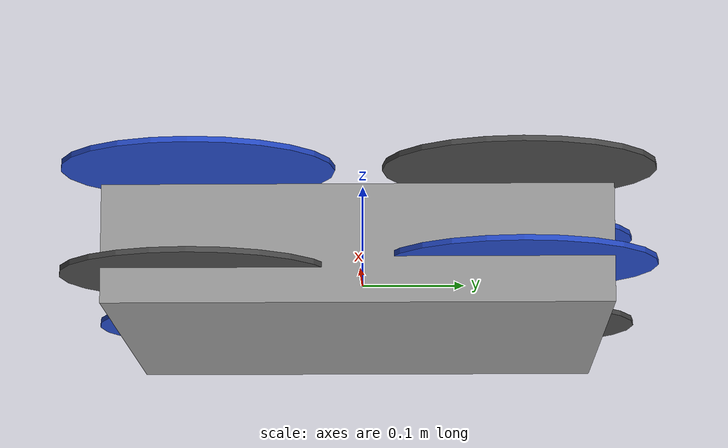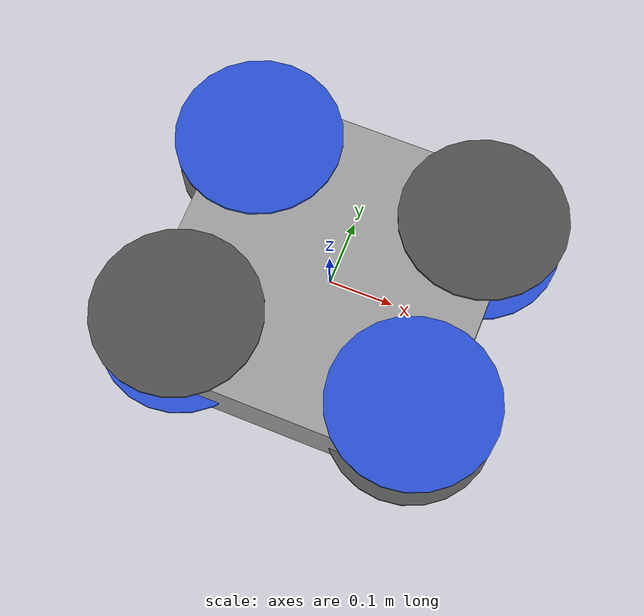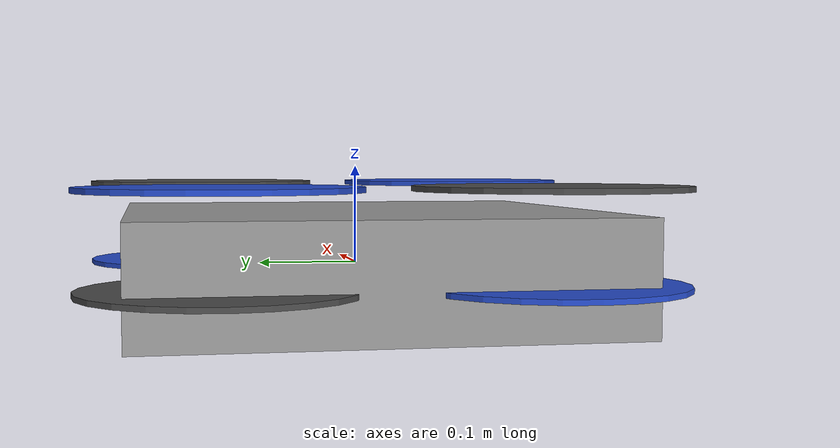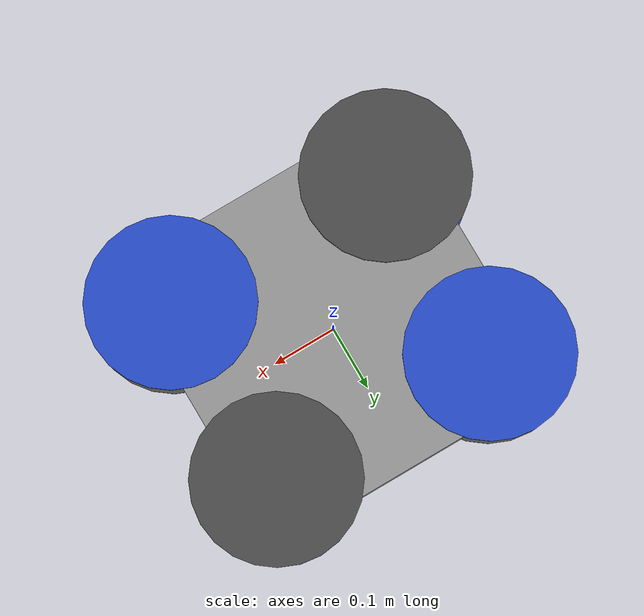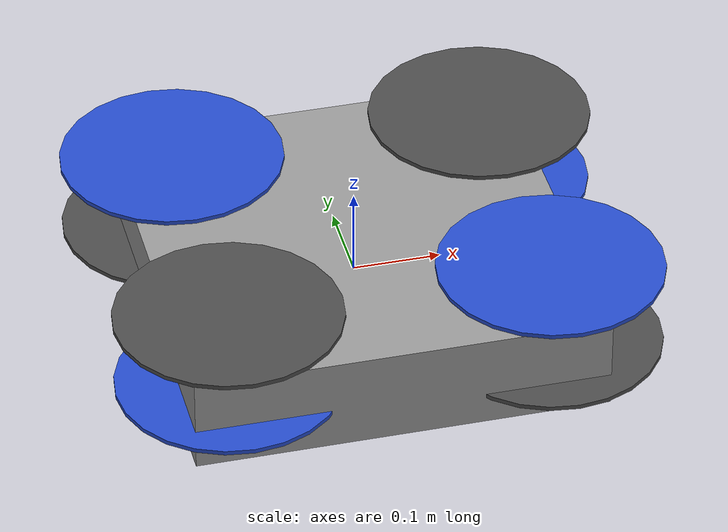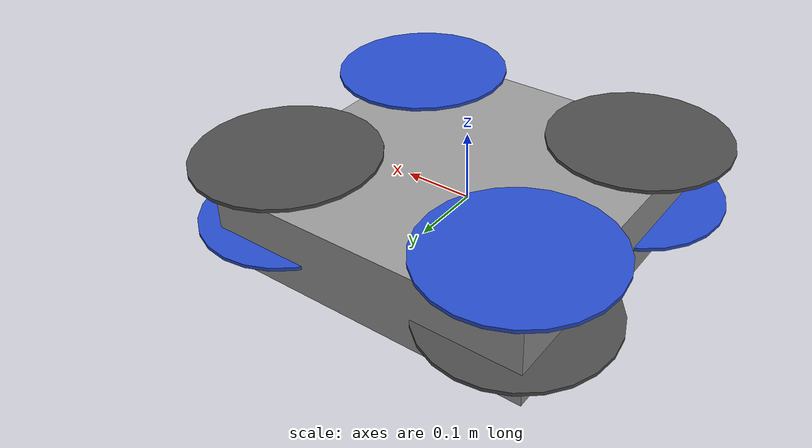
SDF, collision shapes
<sdf version='1.6'>
  <model name='bumblebee'>
    <link name='base_link'>
      <pose frame=''>0 0 0 0 -0 0</pose>
      <inertial>
        <pose frame=''>0 0 0 0 -0 0</pose>
        <mass>1.5</mass>
        <inertia>
          <ixx>0.029125</ixx>
          <ixy>0</ixy>
          <ixz>0</ixz>
          <iyy>0.029125</iyy>
          <iyz>0</iyz>
          <izz>0.055225</izz>
        </inertia>
      </inertial>
      <collision name='base_link_inertia_collision'>
        <pose frame=''>0 0 0 0 -0 0</pose>
        <geometry>
          <box>
            <size>0.47 0.47 0.11</size>
          </box>
        </geometry>
        <surface>
          <contact>
            <ode>
              <min_depth>0.001</min_depth>
              <max_vel>0</max_vel>
            </ode>
          </contact>
          <friction>
            <ode/>
          </friction>
        </surface>
      </collision>
      <visual name='base_link_inertia_visual'>
        <pose frame=''>0 0 0.015 1.57079632679 0 0</pose>
        <geometry>
          <mesh>
            <scale>0.001 0.001 0.001</scale>
            <uri>model://rotors_description/meshes/bumblebee.stl</uri>
          </mesh>

        </geometry>
        <material>
          <script>
            <name>Gazebo/Grey</name>
            <uri>file://media/materials/scripts/gazebo.material</uri>
          </script>
        </material>
      </visual>
      <gravity>1</gravity>
      <velocity_decay/>
    </link>
    <link name='/imu_link'>
      <pose frame=''>0 0 0 0 -0 0</pose>
      <inertial>
        <pose frame=''>0 0 0 0 -0 0</pose>
        <mass>0.015</mass>
        <inertia>
          <ixx>1e-05</ixx>
          <ixy>0</ixy>
          <ixz>0</ixz>
          <iyy>1e-05</iyy>
          <iyz>0</iyz>
          <izz>1e-05</izz>
        </inertia>
      </inertial>
    </link>
    <joint name='/imu_joint' type='revolute'>
      <child>/imu_link</child>
      <parent>base_link</parent>
      <axis>
        <xyz>1 0 0</xyz>
        <limit>
          <lower>0</lower>
          <upper>0</upper>
          <effort>0</effort>
          <velocity>0</velocity>
        </limit>
        <dynamics>
          <spring_reference>0</spring_reference>
          <spring_stiffness>0</spring_stiffness>
        </dynamics>
        <use_parent_model_frame>1</use_parent_model_frame>
      </axis>
    </joint>
    <link name='rotor_0'>
      <pose frame=''>0.1868 -0.15 0.08 0 -0 0</pose>
      <inertial>
        <pose frame=''>0 0 0 0 -0 0</pose>
        <mass>0.005</mass>
        <inertia>
          <ixx>9.75e-07</ixx>
          <ixy>0</ixy>
          <ixz>0</ixz>
          <iyy>0.000273104</iyy>
          <iyz>0</iyz>
          <izz>0.000274004</izz>
        </inertia>
      </inertial>
      <collision name='rotor_0_collision'>
        <pose frame=''>0 0 0 0 -0 0</pose>
        <geometry>
          <cylinder>
            <length>0.005</length>
            <radius>0.128</radius>
          </cylinder>
        </geometry>
        <surface>
          <contact>
            <ode/>
          </contact>
          <friction>
            <ode/>
          </friction>
        </surface>
      </collision>
      <visual name='rotor_0_visual'>
        <pose frame=''>0 0 0 0 0 0</pose>
        <geometry>
          <mesh>
            <scale>1 1 1</scale>
            <uri>model://rotors_description/meshes/iris_prop_ccw.dae</uri>
          </mesh>
        </geometry>
        <material>
          <script>
            <name>Gazebo/Blue</name>
            <uri>file://media/materials/scripts/gazebo.material</uri>
          </script>
        </material>
      </visual>
      <gravity>1</gravity>
      <velocity_decay/>
    </link>
    <joint name='rotor_0_joint' type='revolute'>
      <child>rotor_0</child>
      <parent>base_link</parent>
      <axis>
        <xyz>0 0 1</xyz>
        <limit>
          <lower>-1e+16</lower>
          <upper>1e+16</upper>
        </limit>
        <dynamics>
          <spring_reference>0</spring_reference>
          <spring_stiffness>0</spring_stiffness>
        </dynamics>
        <use_parent_model_frame>1</use_parent_model_frame>
      </axis>
    </joint>

    <link name='rotor_4'>
      <pose frame=''>0.1868 -0.15 -0.02 0 -0 0</pose>
      <inertial>
        <pose frame=''>0 0 0 0 -0 0</pose>
        <mass>0.005</mass>
        <inertia>
          <ixx>9.75e-07</ixx>
          <ixy>0</ixy>
          <ixz>0</ixz>
          <iyy>0.000273104</iyy>
          <iyz>0</iyz>
          <izz>0.000274004</izz>
        </inertia>
      </inertial>
      <collision name='rotor_4_collision'>
        <pose frame=''>0 0 0 3.14 -0 0</pose>
        <geometry>
          <cylinder>
            <length>0.005</length>
            <radius>0.128</radius>
          </cylinder>
        </geometry>
        <surface>
          <contact>
            <ode/>
          </contact>
          <friction>
            <ode/>
          </friction>
        </surface>
      </collision>
      <visual name='rotor_4_visual'>
        <pose frame=''>0 0 0 0 0 0</pose>
        <geometry>
          <mesh>
            <scale>1 1 1</scale>
            <uri>model://rotors_description/meshes/iris_prop_cw.dae</uri>
          </mesh>
        </geometry>
        <material>
          <script>
            <name>Gazebo/DarkGrey</name>
            <uri>file://media/materials/scripts/gazebo.material</uri>
          </script>
        </material>
      </visual>
      <gravity>1</gravity>
      <velocity_decay/>
    </link>
    <joint name='rotor_4_joint' type='revolute'>
      <child>rotor_4</child>
      <parent>base_link</parent>
      <axis>
        <xyz>0 0 1</xyz>
        <limit>
          <lower>-1e+16</lower>
          <upper>1e+16</upper>
        </limit>
        <dynamics>
          <spring_reference>0</spring_reference>
          <spring_stiffness>0</spring_stiffness>
        </dynamics>
        <use_parent_model_frame>1</use_parent_model_frame>
      </axis>
    </joint>

    <link name='rotor_1'>
      <pose frame=''>-0.1758 0.151 0.08 0 -0 0</pose>
      <inertial>
        <pose frame=''>0 0 0 0 -0 0</pose>
        <mass>0.005</mass>
        <inertia>
          <ixx>9.75e-07</ixx>
          <ixy>0</ixy>
          <ixz>0</ixz>
          <iyy>0.000273104</iyy>
          <iyz>0</iyz>
          <izz>0.000274004</izz>
        </inertia>
      </inertial>
      <collision name='rotor_1_collision'>
        <pose frame=''>0 0 0 0 -0 0</pose>
        <geometry>
          <cylinder>
            <length>0.005</length>
            <radius>0.128</radius>
          </cylinder>
        </geometry>
        <surface>
          <contact>
            <ode/>
          </contact>
          <friction>
            <ode/>
          </friction>
        </surface>
      </collision>
      <visual name='rotor_1_visual'>
        <pose frame=''>0 0 0 0 -0 0</pose>
        <geometry>
          <mesh>
            <scale>1 1 1</scale>
            <uri>model://rotors_description/meshes/iris_prop_ccw.dae
            </uri>
          </mesh>
        </geometry>
        <material>
          <script>
            <name>Gazebo/Blue</name>
            <uri>file://media/materials/scripts/gazebo.material</uri>
          </script>
        </material>
      </visual>
      <gravity>1</gravity>
      <velocity_decay/>
    </link>
    <joint name='rotor_1_joint' type='revolute'>
      <child>rotor_1</child>
      <parent>base_link</parent>
      <axis>
        <xyz>0 0 1</xyz>
        <limit>
          <lower>-1e+16</lower>
          <upper>1e+16</upper>
        </limit>
        <dynamics>
          <spring_reference>0</spring_reference>
          <spring_stiffness>0</spring_stiffness>
        </dynamics>
        <use_parent_model_frame>1</use_parent_model_frame>
      </axis>
    </joint>

    <link name='rotor_5'>
      <pose frame=''>-0.1758 0.151 -0.01 0 -0 0</pose>
      <inertial>
        <pose frame=''>0 0 0 0 -0 0</pose>
        <mass>0.005</mass>
        <inertia>
          <ixx>9.75e-07</ixx>
          <ixy>0</ixy>
          <ixz>0</ixz>
          <iyy>0.000273104</iyy>
          <iyz>0</iyz>
          <izz>0.000274004</izz>
        </inertia>
      </inertial>
      <collision name='rotor_5_collision'>
        <pose frame=''>0 0 0 0 -0 0</pose>
        <geometry>
          <cylinder>
            <length>0.005</length>
            <radius>0.128</radius>
          </cylinder>
        </geometry>
        <surface>
          <contact>
            <ode/>
          </contact>
          <friction>
            <ode/>
          </friction>
        </surface>
      </collision>
      <visual name='rotor_5_visual'>
        <pose frame=''>0 0 0 3.14 -0 0</pose>
        <geometry>
          <mesh>
            <scale>1 1 1</scale>
            <uri>model://rotors_description/meshes/iris_prop_cw.dae
            </uri>
          </mesh>
        </geometry>
        <material>
          <script>
            <name>Gazebo/DarkGrey</name>
            <uri>file://media/materials/scripts/gazebo.material</uri>
          </script>
        </material>
      </visual>
      <gravity>1</gravity>
      <velocity_decay/>
    </link>
    <joint name='rotor_5_joint' type='revolute'>
      <child>rotor_5</child>
      <parent>base_link</parent>
      <axis>
        <xyz>0 0 1</xyz>
        <limit>
          <lower>-1e+16</lower>
          <upper>1e+16</upper>
        </limit>
        <dynamics>
          <spring_reference>0</spring_reference>
          <spring_stiffness>0</spring_stiffness>
        </dynamics>
        <use_parent_model_frame>1</use_parent_model_frame>
      </axis>
    </joint>

    <link name='rotor_2'>
      <pose frame=''>0.1848 0.15 0.08 0 -0 0</pose>
      <inertial>
        <pose frame=''>0 0 0 0 -0 0</pose>
        <mass>0.005</mass>
        <inertia>
          <ixx>9.75e-07</ixx>
          <ixy>0</ixy>
          <ixz>0</ixz>
          <iyy>0.000273104</iyy>
          <iyz>0</iyz>
          <izz>0.000274004</izz>
        </inertia>
      </inertial>
      <collision name='rotor_2_collision'>
        <pose frame=''>0 0 0 0 -0 0</pose>
        <geometry>
          <cylinder>
            <length>0.005</length>
            <radius>0.128</radius>
          </cylinder>
        </geometry>
        <surface>
          <contact>
            <ode/>
          </contact>
          <friction>
            <ode/>
          </friction>
        </surface>
      </collision>
      <visual name='rotor_2_visual'>
        <pose frame=''>0 0 0 0 -0 0</pose>
        <geometry>
          <mesh>
            <scale>1 1 1</scale>
            <uri>model://rotors_description/meshes/iris_prop_cw.dae</uri>
          </mesh>
        </geometry>
        <material>
          <script>
            <name>Gazebo/DarkGrey</name>
            <uri>file://media/materials/scripts/gazebo.material</uri>
          </script>
        </material>
      </visual>
      <gravity>1</gravity>
      <velocity_decay/>
    </link>
    <joint name='rotor_2_joint' type='revolute'>
      <child>rotor_2</child>
      <parent>base_link</parent>
      <axis>
        <xyz>0 0 1</xyz>
        <limit>
          <lower>-1e+16</lower>
          <upper>1e+16</upper>
        </limit>
        <dynamics>
          <spring_reference>0</spring_reference>
          <spring_stiffness>0</spring_stiffness>
        </dynamics>
        <use_parent_model_frame>1</use_parent_model_frame>
      </axis>
    </joint>

    <link name='rotor_6'>
      <pose frame=''>0.1848 0.15 -0.01 0 -0 0</pose>
      <inertial>
        <pose frame=''>0 0 0 0 -0 0</pose>
        <mass>0.005</mass>
        <inertia>
          <ixx>9.75e-07</ixx>
          <ixy>0</ixy>
          <ixz>0</ixz>
          <iyy>0.000273104</iyy>
          <iyz>0</iyz>
          <izz>0.000274004</izz>
        </inertia>
      </inertial>
      <collision name='rotor_6_collision'>
        <pose frame=''>0 0 0 0 -0 0</pose>
        <geometry>
          <cylinder>
            <length>0.005</length>
            <radius>0.128</radius>
          </cylinder>
        </geometry>
        <surface>
          <contact>
            <ode/>
          </contact>
          <friction>
            <ode/>
          </friction>
        </surface>
      </collision>
      <visual name='rotor_6_visual'>
        <pose frame=''>0 0 0 3.14 -0 0</pose>
        <geometry>
          <mesh>
            <scale>1 1 1</scale>
            <uri>model://rotors_description/meshes/iris_prop_ccw.dae</uri>
          </mesh>
        </geometry>
        <material>
          <script>
            <name>Gazebo/Blue</name>
            <uri>file://media/materials/scripts/gazebo.material</uri>
          </script>
        </material>
      </visual>
      <gravity>1</gravity>
      <velocity_decay/>
    </link>
    <joint name='rotor_6_joint' type='revolute'>
      <child>rotor_6</child>
      <parent>base_link</parent>
      <axis>
        <xyz>0 0 1</xyz>
        <limit>
          <lower>-1e+16</lower>
          <upper>1e+16</upper>
        </limit>
        <dynamics>
          <spring_reference>0</spring_reference>
          <spring_stiffness>0</spring_stiffness>
        </dynamics>
        <use_parent_model_frame>1</use_parent_model_frame>
      </axis>
    </joint>

    <link name='rotor_3'>
      <pose frame=''>-0.1778 -0.151 0.08 0 -0 0</pose>
      <inertial>
        <pose frame=''>0 0 0 0 -0 0</pose>
        <mass>0.005</mass>
        <inertia>
          <ixx>9.75e-07</ixx>
          <ixy>0</ixy>
          <ixz>0</ixz>
          <iyy>0.000273104</iyy>
          <iyz>0</iyz>
          <izz>0.000274004</izz>
        </inertia>
      </inertial>
      <collision name='rotor_3_collision'>
        <pose frame=''>0 0 0 0 -0 0</pose>
        <geometry>
          <cylinder>
            <length>0.005</length>
            <radius>0.128</radius>
          </cylinder>
        </geometry>
        <surface>
          <contact>
            <ode/>
          </contact>
          <friction>
            <ode/>
          </friction>
        </surface>
      </collision>
      <visual name='rotor_3_visual'>
        <pose frame=''>0 0 0 0 -0 0</pose>
        <geometry>
          <mesh>
            <scale>1 1 1</scale>
            <uri>model://rotors_description/meshes/iris_prop_cw.dae</uri>
          </mesh>
        </geometry>
        <material>
          <script>
            <name>Gazebo/DarkGrey</name>
            <uri>file://media/materials/scripts/gazebo.material</uri>
          </script>
        </material>
      </visual>
      <gravity>1</gravity>
      <velocity_decay/>
    </link>
    <joint name='rotor_3_joint' type='revolute'>
      <child>rotor_3</child>
      <parent>base_link</parent>
      <axis>
        <xyz>0 0 1</xyz>
        <limit>
          <lower>-1e+16</lower>
          <upper>1e+16</upper>
        </limit>
        <dynamics>
          <spring_reference>0</spring_reference>
          <spring_stiffness>0</spring_stiffness>
        </dynamics>
        <use_parent_model_frame>1</use_parent_model_frame>
      </axis>
    </joint>

    <link name='rotor_7'>
      <pose frame=''>-0.1778 -0.151 -0.01 0 -0 0</pose>
      <inertial>
        <pose frame=''>0 0 0 0 -0 0</pose>
        <mass>0.005</mass>
        <inertia>
          <ixx>9.75e-07</ixx>
          <ixy>0</ixy>
          <ixz>0</ixz>
          <iyy>0.000273104</iyy>
          <iyz>0</iyz>
          <izz>0.000274004</izz>
        </inertia>
      </inertial>
      <collision name='rotor_7_collision'>
        <pose frame=''>0 0 0 0 -0 0</pose>
        <geometry>
          <cylinder>
            <length>0.005</length>
            <radius>0.128</radius>
          </cylinder>
        </geometry>
        <surface>
          <contact>
            <ode/>
          </contact>
          <friction>
            <ode/>
          </friction>
        </surface>
      </collision>
      <visual name='rotor_7_visual'>
        <pose frame=''>0 0 0 3.14 -0 0</pose>
        <geometry>
          <mesh>
            <scale>1 1 1</scale>
            <uri>model://rotors_description/meshes/iris_prop_ccw.dae</uri>
          </mesh>
        </geometry>
        <material>
          <script>
            <name>Gazebo/Blue</name>
            <uri>file://media/materials/scripts/gazebo.material</uri>
          </script>
        </material>
      </visual>
      <gravity>1</gravity>
      <velocity_decay/>
    </link>
    <joint name='rotor_7_joint' type='revolute'>
      <child>rotor_7</child>
      <parent>base_link</parent>
      <axis>
        <xyz>0 0 1</xyz>
        <limit>
          <lower>-1e+16</lower>
          <upper>1e+16</upper>
        </limit>
        <dynamics>
          <spring_reference>0</spring_reference>
          <spring_stiffness>0</spring_stiffness>
        </dynamics>
        <use_parent_model_frame>1</use_parent_model_frame>
      </axis>
    </joint>

    <plugin name='rosbag' filename='libgazebo_multirotor_base_plugin.so'>
      <robotNamespace/>
      <linkName>base_link</linkName>
      <rotorVelocitySlowdownSim>10</rotorVelocitySlowdownSim>
    </plugin>
    <plugin name='front_right_motor_model' filename='libgazebo_motor_model.so'>
      <robotNamespace/>
      <jointName>rotor_0_joint</jointName>
      <linkName>rotor_0</linkName>
      <turningDirection>ccw</turningDirection>
      <timeConstantUp>0.0125</timeConstantUp>
      <timeConstantDown>0.025</timeConstantDown>
      <maxRotVelocity>1100</maxRotVelocity>
      <motorConstant>8.54858e-06</motorConstant>
      <momentConstant>0.06</momentConstant>
      <commandSubTopic>/gazebo/command/motor_speed</commandSubTopic>
      <motorNumber>0</motorNumber>
      <rotorDragCoefficient>0.000175</rotorDragCoefficient>
      <rollingMomentCoefficient>1e-06</rollingMomentCoefficient>
      <motorSpeedPubTopic>/motor_speed/0</motorSpeedPubTopic>
      <rotorVelocitySlowdownSim>10</rotorVelocitySlowdownSim>
    </plugin>
    <plugin name='front_right_bottom_motor_model' filename='libgazebo_motor_model.so'>
      <robotNamespace/>
      <jointName>rotor_4_joint</jointName>
      <linkName>rotor_4</linkName>
      <turningDirection>cw</turningDirection>
      <timeConstantUp>0.0125</timeConstantUp>
      <timeConstantDown>0.025</timeConstantDown>
      <maxRotVelocity>1100</maxRotVelocity>
      <motorConstant>0</motorConstant>
      <momentConstant>0</momentConstant>
      <commandSubTopic>/gazebo/command/motor_speed</commandSubTopic>
      <motorNumber>0</motorNumber>
      <rotorDragCoefficient>0</rotorDragCoefficient>
      <rollingMomentCoefficient>0</rollingMomentCoefficient>
      <motorSpeedPubTopic>/motor_speed/0</motorSpeedPubTopic>
      <rotorVelocitySlowdownSim>10</rotorVelocitySlowdownSim>
    </plugin>
    <plugin name='back_left_motor_model' filename='libgazebo_motor_model.so'>
      <robotNamespace/>
      <jointName>rotor_1_joint</jointName>
      <linkName>rotor_1</linkName>
      <turningDirection>ccw</turningDirection>
      <timeConstantUp>0.0125</timeConstantUp>
      <timeConstantDown>0.025</timeConstantDown>
      <maxRotVelocity>1100</maxRotVelocity>
      <motorConstant>8.54858e-06</motorConstant>
      <momentConstant>0.06</momentConstant>
      <commandSubTopic>/gazebo/command/motor_speed</commandSubTopic>
      <motorNumber>1</motorNumber>
      <rotorDragCoefficient>0.000175</rotorDragCoefficient>
      <rollingMomentCoefficient>1e-06</rollingMomentCoefficient>
      <motorSpeedPubTopic>/motor_speed/1</motorSpeedPubTopic>
      <rotorVelocitySlowdownSim>10</rotorVelocitySlowdownSim>
    </plugin>
    <plugin name='back_left_bottom_motor_model' filename='libgazebo_motor_model.so'>
      <robotNamespace/>
      <jointName>rotor_5_joint</jointName>
      <linkName>rotor_5</linkName>
      <turningDirection>cw</turningDirection>
      <timeConstantUp>0.0125</timeConstantUp>
      <timeConstantDown>0.025</timeConstantDown>
      <maxRotVelocity>1100</maxRotVelocity>
      <motorConstant>0</motorConstant>
      <momentConstant>0</momentConstant>
      <commandSubTopic>/gazebo/command/motor_speed</commandSubTopic>
      <motorNumber>1</motorNumber>
      <rotorDragCoefficient>0</rotorDragCoefficient>
      <rollingMomentCoefficient>0</rollingMomentCoefficient>
      <motorSpeedPubTopic>/motor_speed/1</motorSpeedPubTopic>
      <rotorVelocitySlowdownSim>10</rotorVelocitySlowdownSim>
    </plugin>
    <plugin name='front_left_motor_model' filename='libgazebo_motor_model.so'>
      <robotNamespace/>
      <jointName>rotor_2_joint</jointName>
      <linkName>rotor_2</linkName>
      <turningDirection>cw</turningDirection>
      <timeConstantUp>0.0125</timeConstantUp>
      <timeConstantDown>0.025</timeConstantDown>
      <maxRotVelocity>1100</maxRotVelocity>
      <motorConstant>8.54858e-06</motorConstant>
      <momentConstant>0.06</momentConstant>
      <commandSubTopic>/gazebo/command/motor_speed</commandSubTopic>
      <motorNumber>2</motorNumber>
      <rotorDragCoefficient>0.000175</rotorDragCoefficient>
      <rollingMomentCoefficient>1e-06</rollingMomentCoefficient>
      <motorSpeedPubTopic>/motor_speed/2</motorSpeedPubTopic>
      <rotorVelocitySlowdownSim>10</rotorVelocitySlowdownSim>
    </plugin>
    <plugin name='front_left_bottom_motor_model' filename='libgazebo_motor_model.so'>
      <robotNamespace/>
      <jointName>rotor_6_joint</jointName>
      <linkName>rotor_6</linkName>
      <turningDirection>ccw</turningDirection>
      <timeConstantUp>0.0125</timeConstantUp>
      <timeConstantDown>0.025</timeConstantDown>
      <maxRotVelocity>1100</maxRotVelocity>
      <motorConstant>0</motorConstant>
      <momentConstant>0</momentConstant>
      <commandSubTopic>/gazebo/command/motor_speed</commandSubTopic>
      <motorNumber>2</motorNumber>
      <rotorDragCoefficient>0</rotorDragCoefficient>
      <rollingMomentCoefficient>0</rollingMomentCoefficient>
      <motorSpeedPubTopic>/motor_speed/2</motorSpeedPubTopic>
      <rotorVelocitySlowdownSim>10</rotorVelocitySlowdownSim>
    </plugin>
    <plugin name='back_right_motor_model' filename='libgazebo_motor_model.so'>
      <robotNamespace/>
      <jointName>rotor_3_joint</jointName>
      <linkName>rotor_3</linkName>
      <turningDirection>cw</turningDirection>
      <timeConstantUp>0.0125</timeConstantUp>
      <timeConstantDown>0.025</timeConstantDown>
      <maxRotVelocity>1100</maxRotVelocity>
      <motorConstant>8.54858e-06</motorConstant>
      <momentConstant>0.06</momentConstant>
      <commandSubTopic>/gazebo/command/motor_speed</commandSubTopic>
      <motorNumber>3</motorNumber>
      <rotorDragCoefficient>0.000175</rotorDragCoefficient>
      <rollingMomentCoefficient>1e-06</rollingMomentCoefficient>
      <motorSpeedPubTopic>/motor_speed/3</motorSpeedPubTopic>
      <rotorVelocitySlowdownSim>10</rotorVelocitySlowdownSim>
    </plugin>
    <plugin name='back_right_bottom_motor_model' filename='libgazebo_motor_model.so'>
      <robotNamespace/>
      <jointName>rotor_7_joint</jointName>
      <linkName>rotor_7</linkName>
      <turningDirection>ccw</turningDirection>
      <timeConstantUp>0.0125</timeConstantUp>
      <timeConstantDown>0.025</timeConstantDown>
      <maxRotVelocity>1100</maxRotVelocity>
      <motorConstant>0</motorConstant>
      <momentConstant>0</momentConstant>
      <commandSubTopic>/gazebo/command/motor_speed</commandSubTopic>
      <motorNumber>3</motorNumber>
      <rotorDragCoefficient>0</rotorDragCoefficient>
      <rollingMomentCoefficient>0</rollingMomentCoefficient>
      <motorSpeedPubTopic>/motor_speed/3</motorSpeedPubTopic>
      <rotorVelocitySlowdownSim>10</rotorVelocitySlowdownSim>
    </plugin>

    <model name='gps0'>
      <link name='link'>
        <pose>0 0 0 0 -0 0</pose>
        <inertial>
          <pose>0 0 0 0 -0 0</pose>
          <mass>0.01</mass>
          <inertia>
            <ixx>2.1733e-06</ixx>
            <ixy>0</ixy>
            <ixz>0</ixz>
            <iyy>2.1733e-06</iyy>
            <iyz>0</iyz>
            <izz>1.8e-07</izz>
          </inertia>
        </inertial>
        <visual name='visual'>
          <geometry>
            <cylinder>
              <radius>0.01</radius>
              <length>0.002</length>
            </cylinder>
          </geometry>
          <material>
            <script>
              <name>Gazebo/Black</name>
              <uri>__default__</uri>
            </script>
          </material>
        </visual>
        <sensor name='gps' type='gps'>
          <pose>0 0 0 0 -0 0</pose>
          <plugin name='gps_plugin' filename='libgazebo_gps_plugin.so'>
            <robotNamespace/>
            <gpsNoise>1</gpsNoise>
            <gpsXYRandomWalk>2.0</gpsXYRandomWalk>
            <gpsZRandomWalk>4.0</gpsZRandomWalk>
            <gpsXYNoiseDensity>0.0002</gpsXYNoiseDensity>
            <gpsZNoiseDensity>0.0004</gpsZNoiseDensity>
            <gpsVXYNoiseDensity>0.2</gpsVXYNoiseDensity>
            <gpsVZNoiseDensity>0.4</gpsVZNoiseDensity>
          </plugin>
        </sensor>
      </link>
    </model>
    <joint name='gps0_joint' type='fixed'>
      <parent>base_link</parent>
      <child>gps0::link</child>
    </joint>
    <plugin name='groundtruth_plugin' filename='libgazebo_groundtruth_plugin.so'>
      <robotNamespace/>
    </plugin>

    <plugin name='magnetometer_plugin' filename='libgazebo_magnetometer_plugin.so'>
      <robotNamespace/>
      <pubRate>100</pubRate>
      <noiseDensity>0.0004</noiseDensity>
      <randomWalk>6.4e-06</randomWalk>
      <biasCorrelationTime>600</biasCorrelationTime>
      <magTopic>/mag</magTopic>
    </plugin>
    <plugin name='barometer_plugin' filename='libgazebo_barometer_plugin.so'>
      <robotNamespace/>
      <pubRate>50</pubRate>
      <baroTopic>/baro</baroTopic>
    </plugin>
    <plugin name='mavlink_interface' filename='libgazebo_mavlink_interface.so'>
      <robotNamespace/>
      <imuSubTopic>/imu</imuSubTopic>
      <gpsSubTopic>/gps</gpsSubTopic>
      <magSubTopic>/mag</magSubTopic>
      <baroSubTopic>/baro</baroSubTopic>
      <mavlink_addr>INADDR_ANY</mavlink_addr>
      <mavlink_udp_port>14560</mavlink_udp_port>
      <mavlink_tcp_port>4560</mavlink_tcp_port>
      <serialEnabled>0</serialEnabled>
      <serialDevice>/dev/ttyACM0</serialDevice>
      <baudRate>921600</baudRate>
      <qgc_addr>INADDR_ANY</qgc_addr>
      <qgc_udp_port>14550</qgc_udp_port>
      <sdk_addr>INADDR_ANY</sdk_addr>
      <sdk_udp_port>14540</sdk_udp_port>
      <hil_mode>0</hil_mode>
      <hil_state_level>0</hil_state_level>
      <vehicle_is_tailsitter>0</vehicle_is_tailsitter>
      <send_vision_estimation>1</send_vision_estimation>
      <send_odometry>0</send_odometry>
      <enable_lockstep>1</enable_lockstep>
      <use_tcp>1</use_tcp>
      <motorSpeedCommandPubTopic>/gazebo/command/motor_speed</motorSpeedCommandPubTopic>
      <control_channels>
        <channel name='rotor1'>
          <input_index>0</input_index>
          <input_offset>0</input_offset>
          <input_scaling>1000</input_scaling>
          <zero_position_disarmed>0</zero_position_disarmed>
          <zero_position_armed>100</zero_position_armed>
          <joint_control_type>velocity</joint_control_type>
        </channel>
        <channel name='rotor2'>
          <input_index>1</input_index>
          <input_offset>0</input_offset>
          <input_scaling>1000</input_scaling>
          <zero_position_disarmed>0</zero_position_disarmed>
          <zero_position_armed>100</zero_position_armed>
          <joint_control_type>velocity</joint_control_type>
        </channel>
        <channel name='rotor3'>
          <input_index>2</input_index>
          <input_offset>0</input_offset>
          <input_scaling>1000</input_scaling>
          <zero_position_disarmed>0</zero_position_disarmed>
          <zero_position_armed>100</zero_position_armed>
          <joint_control_type>velocity</joint_control_type>
        </channel>
        <channel name='rotor4'>
          <input_index>3</input_index>
          <input_offset>0</input_offset>
          <input_scaling>1000</input_scaling>
          <zero_position_disarmed>0</zero_position_disarmed>
          <zero_position_armed>100</zero_position_armed>
          <joint_control_type>velocity</joint_control_type>
        </channel>
        <channel name='rotor5'>
          <input_index>4</input_index>
          <input_offset>1</input_offset>
          <input_scaling>324.6</input_scaling>
          <zero_position_disarmed>0</zero_position_disarmed>
          <zero_position_armed>0</zero_position_armed>
          <joint_control_type>velocity</joint_control_type>
          <joint_control_pid>
            <p>0.1</p>
            <i>0</i>
            <d>0</d>
            <iMax>0.0</iMax>
            <iMin>0.0</iMin>
            <cmdMax>2</cmdMax>
            <cmdMin>-2</cmdMin>
          </joint_control_pid>
          <joint_name>zephyr_delta_wing::propeller_joint</joint_name>
        </channel>
        <channel name='rotor6'>
          <input_index>5</input_index>
          <input_offset>0</input_offset>
          <input_scaling>0.524</input_scaling>
          <zero_position_disarmed>0</zero_position_disarmed>
          <zero_position_armed>0</zero_position_armed>
          <joint_control_type>position</joint_control_type>
          <joint_name>zephyr_delta_wing::flap_left_joint</joint_name>
          <joint_control_pid>
            <p>10.0</p>
            <i>0</i>
            <d>0</d>
            <iMax>0</iMax>
            <iMin>0</iMin>
            <cmdMax>20</cmdMax>
            <cmdMin>-20</cmdMin>
          </joint_control_pid>
        </channel>
        <channel name='rotor7'>
          <input_index>6</input_index>
          <input_offset>0</input_offset>
          <input_scaling>0.524</input_scaling>
          <zero_position_disarmed>0</zero_position_disarmed>
          <zero_position_armed>0</zero_position_armed>
          <joint_control_type>position</joint_control_type>
          <joint_name>zephyr_delta_wing::flap_right_joint</joint_name>
          <joint_control_pid>
            <p>10.0</p>
            <i>0</i>
            <d>0</d>
            <iMax>0</iMax>
            <iMin>0</iMin>
            <cmdMax>20</cmdMax>
            <cmdMin>-20</cmdMin>
          </joint_control_pid>
        </channel>
        <channel name='rotor8'>
          <input_index>7</input_index>
          <input_offset>0</input_offset>
          <input_scaling>0.524</input_scaling>
          <zero_position_disarmed>0</zero_position_disarmed>
          <zero_position_armed>0</zero_position_armed>
          <joint_control_type>position</joint_control_type>
        </channel>
      </control_channels>
    </plugin>
    <static>0</static>
    <plugin name='rotors_gazebo_imu_plugin' filename='libgazebo_imu_plugin.so'>
      <robotNamespace/>
      <linkName>/imu_link</linkName>
      <imuTopic>/imu</imuTopic>
      <gyroscopeNoiseDensity>0.00018665</gyroscopeNoiseDensity>
      <gyroscopeRandomWalk>3.8785e-05</gyroscopeRandomWalk>
      <gyroscopeBiasCorrelationTime>1000.0</gyroscopeBiasCorrelationTime>
      <gyroscopeTurnOnBiasSigma>0.0087</gyroscopeTurnOnBiasSigma>
      <accelerometerNoiseDensity>0.00186</accelerometerNoiseDensity>
      <accelerometerRandomWalk>0.006</accelerometerRandomWalk>
      <accelerometerBiasCorrelationTime>300.0</accelerometerBiasCorrelationTime>
      <accelerometerTurnOnBiasSigma>0.196</accelerometerTurnOnBiasSigma>
    </plugin>

    <!-- Publish Ground Truth To ROS -->
    <plugin name="p3d_base_controller" filename="libgazebo_ros_p3d.so">
      <alwaysOn>true</alwaysOn>
      <updateRate>50.0</updateRate>
      <bodyName>base_link</bodyName>
      <topicName>odometry</topicName>
      <gaussianNoise>0.01</gaussianNoise>
      <frameName>map</frameName>
      <xyzOffsets>0 0 0</xyzOffsets>
      <rpyOffsets>0 0 0</rpyOffsets>
    </plugin>
  </model>
</sdf>
